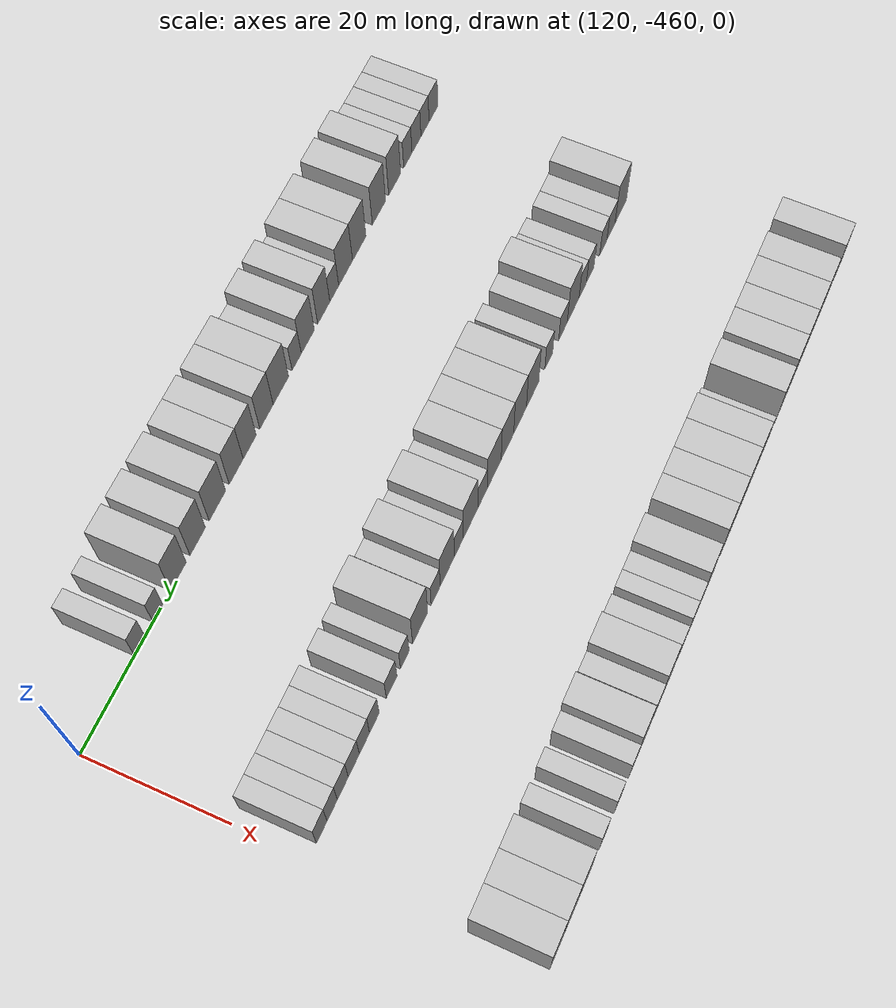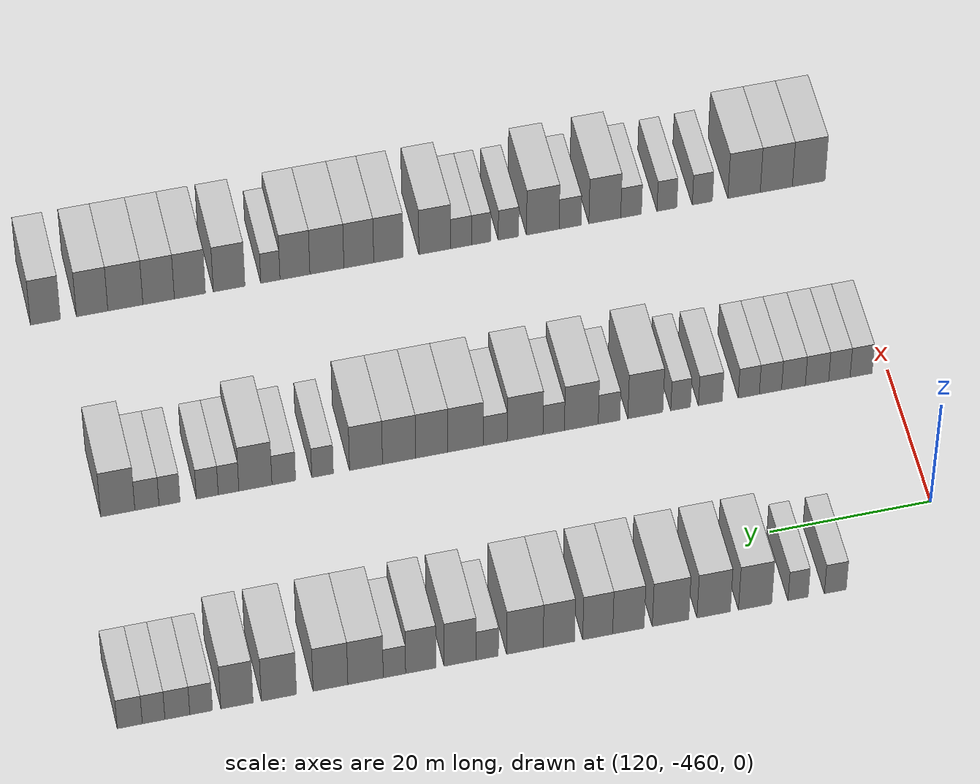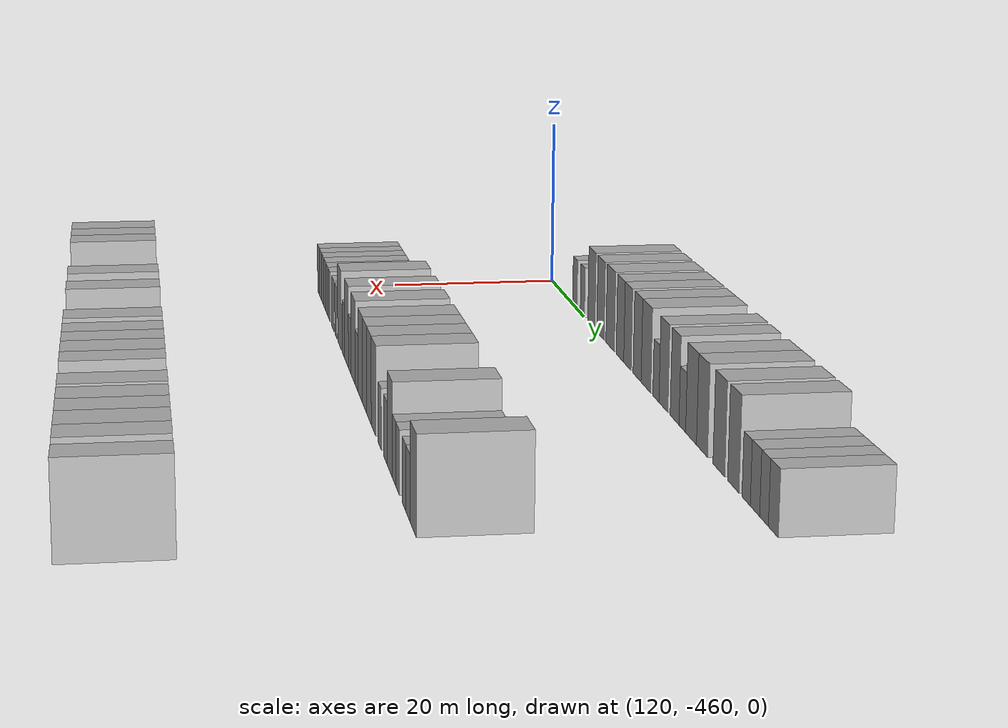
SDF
<sdf version="1.6">
 <world name="default">
  <model name="building_671">
   <static>1</static>
   <pose>115.0000 -445.3760 0 0.000000 0.000000 0.000000</pose>
   <link name="link">
    <pose>0 0 3.00 0 0 0</pose>
    <collision name="collision"><geometry><box><size>10.0000 2.6775 6.0000</size></box></geometry></collision>
    <visual name="visual">
     <cast_shadows>0</cast_shadows>
     <geometry><box><size>10.0000 2.6775 6.0000</size></box></geometry>
     <material>
      <script>
       <uri>model://HANNAS_wall/materials/scripts</uri>
       <uri>model://HANNAS_wall/materials/textures</uri>
       <name>vrc/HANNAS_wall</name>
      </script>
     </material>
    </visual>
   </link>
  </model>
  <model name="building_672">
   <static>1</static>
   <pose>115.0000 -440.8001 0 0.000000 0.000000 0.000000</pose>
   <link name="link">
    <pose>0 0 3.00 0 0 0</pose>
    <collision name="collision"><geometry><box><size>10.0000 2.4742 6.0000</size></box></geometry></collision>
    <visual name="visual">
     <cast_shadows>0</cast_shadows>
     <geometry><box><size>10.0000 2.4742 6.0000</size></box></geometry>
     <material>
      <script>
       <uri>model://HANNAS_wall/materials/scripts</uri>
       <uri>model://HANNAS_wall/materials/textures</uri>
       <name>vrc/HANNAS_wall</name>
      </script>
     </material>
    </visual>
   </link>
  </model>
  <model name="building_673">
   <static>1</static>
   <pose>115.0000 -435.5275 0 0.000000 0.000000 0.000000</pose>
   <link name="link">
    <pose>0 0 4.50 0 0 0</pose>
    <collision name="collision"><geometry><box><size>10.0000 4.0710 9.0000</size></box></geometry></collision>
    <visual name="visual">
     <cast_shadows>0</cast_shadows>
     <geometry><box><size>10.0000 4.0710 9.0000</size></box></geometry>
     <material>
      <script>
       <uri>model://HANNAS_wall/materials/scripts</uri>
       <uri>model://HANNAS_wall/materials/textures</uri>
       <name>vrc/HANNAS_wall</name>
      </script>
     </material>
    </visual>
   </link>
  </model>
  <model name="building_674">
   <static>1</static>
   <pose>115.0000 -430.4499 0 0.000000 0.000000 0.000000</pose>
   <link name="link">
    <pose>0 0 4.50 0 0 0</pose>
    <collision name="collision"><geometry><box><size>10.0000 4.0842 9.0000</size></box></geometry></collision>
    <visual name="visual">
     <cast_shadows>0</cast_shadows>
     <geometry><box><size>10.0000 4.0842 9.0000</size></box></geometry>
     <material>
      <script>
       <uri>model://HANNAS_wall/materials/scripts</uri>
       <uri>model://HANNAS_wall/materials/textures</uri>
       <name>vrc/HANNAS_wall</name>
      </script>
     </material>
    </visual>
   </link>
  </model>
  <model name="building_675">
   <static>1</static>
   <pose>115.0000 -425.1798 0 0.000000 0.000000 0.000000</pose>
   <link name="link">
    <pose>0 0 4.50 0 0 0</pose>
    <collision name="collision"><geometry><box><size>10.0000 4.4559 9.0000</size></box></geometry></collision>
    <visual name="visual">
     <cast_shadows>0</cast_shadows>
     <geometry><box><size>10.0000 4.4559 9.0000</size></box></geometry>
     <material>
      <script>
       <uri>model://HANNAS_wall/materials/scripts</uri>
       <uri>model://HANNAS_wall/materials/textures</uri>
       <name>vrc/HANNAS_wall</name>
      </script>
     </material>
    </visual>
   </link>
  </model>
  <model name="building_676">
   <static>1</static>
   <pose>115.0000 -420.0341 0 0.000000 0.000000 0.000000</pose>
   <link name="link">
    <pose>0 0 4.50 0 0 0</pose>
    <collision name="collision"><geometry><box><size>10.0000 3.8355 9.0000</size></box></geometry></collision>
    <visual name="visual">
     <cast_shadows>0</cast_shadows>
     <geometry><box><size>10.0000 3.8355 9.0000</size></box></geometry>
     <material>
      <script>
       <uri>model://HANNAS_wall/materials/scripts</uri>
       <uri>model://HANNAS_wall/materials/textures</uri>
       <name>vrc/HANNAS_wall</name>
      </script>
     </material>
    </visual>
   </link>
  </model>
  <model name="building_677">
   <static>1</static>
   <pose>115.0000 -416.2939 0 0.000000 0.000000 0.000000</pose>
   <link name="link">
    <pose>0 0 4.50 0 0 0</pose>
    <collision name="collision"><geometry><box><size>10.0000 3.6450 9.0000</size></box></geometry></collision>
    <visual name="visual">
     <cast_shadows>0</cast_shadows>
     <geometry><box><size>10.0000 3.6450 9.0000</size></box></geometry>
     <material>
      <script>
       <uri>model://HANNAS_wall/materials/scripts</uri>
       <uri>model://HANNAS_wall/materials/textures</uri>
       <name>vrc/HANNAS_wall</name>
      </script>
     </material>
    </visual>
   </link>
  </model>
  <model name="building_678">
   <static>1</static>
   <pose>115.0000 -411.5690 0 0.000000 0.000000 0.000000</pose>
   <link name="link">
    <pose>0 0 4.50 0 0 0</pose>
    <collision name="collision"><geometry><box><size>10.0000 3.8047 9.0000</size></box></geometry></collision>
    <visual name="visual">
     <cast_shadows>0</cast_shadows>
     <geometry><box><size>10.0000 3.8047 9.0000</size></box></geometry>
     <material>
      <script>
       <uri>model://HANNAS_wall/materials/scripts</uri>
       <uri>model://HANNAS_wall/materials/textures</uri>
       <name>vrc/HANNAS_wall</name>
      </script>
     </material>
    </visual>
   </link>
  </model>
  <model name="building_679">
   <static>1</static>
   <pose>115.0000 -407.4500 0 0.000000 0.000000 0.000000</pose>
   <link name="link">
    <pose>0 0 4.50 0 0 0</pose>
    <collision name="collision"><geometry><box><size>10.0000 4.4335 9.0000</size></box></geometry></collision>
    <visual name="visual">
     <cast_shadows>0</cast_shadows>
     <geometry><box><size>10.0000 4.4335 9.0000</size></box></geometry>
     <material>
      <script>
       <uri>model://HANNAS_wall/materials/scripts</uri>
       <uri>model://HANNAS_wall/materials/textures</uri>
       <name>vrc/HANNAS_wall</name>
      </script>
     </material>
    </visual>
   </link>
  </model>
  <model name="building_680">
   <static>1</static>
   <pose>115.0000 -402.8796 0 0.000000 0.000000 0.000000</pose>
   <link name="link">
    <pose>0 0 3.00 0 0 0</pose>
    <collision name="collision"><geometry><box><size>10.0000 2.7072 6.0000</size></box></geometry></collision>
    <visual name="visual">
     <cast_shadows>0</cast_shadows>
     <geometry><box><size>10.0000 2.7072 6.0000</size></box></geometry>
     <material>
      <script>
       <uri>model://HANNAS_wall/materials/scripts</uri>
       <uri>model://HANNAS_wall/materials/textures</uri>
       <name>vrc/HANNAS_wall</name>
      </script>
     </material>
    </visual>
   </link>
  </model>
  <model name="building_681">
   <static>1</static>
   <pose>115.0000 -399.5985 0 0.000000 0.000000 0.000000</pose>
   <link name="link">
    <pose>0 0 4.50 0 0 0</pose>
    <collision name="collision"><geometry><box><size>10.0000 3.8552 9.0000</size></box></geometry></collision>
    <visual name="visual">
     <cast_shadows>0</cast_shadows>
     <geometry><box><size>10.0000 3.8552 9.0000</size></box></geometry>
     <material>
      <script>
       <uri>model://HANNAS_wall/materials/scripts</uri>
       <uri>model://HANNAS_wall/materials/textures</uri>
       <name>vrc/HANNAS_wall</name>
      </script>
     </material>
    </visual>
   </link>
  </model>
  <model name="building_682">
   <static>1</static>
   <pose>115.0000 -394.8462 0 0.000000 0.000000 0.000000</pose>
   <link name="link">
    <pose>0 0 4.50 0 0 0</pose>
    <collision name="collision"><geometry><box><size>10.0000 3.6493 9.0000</size></box></geometry></collision>
    <visual name="visual">
     <cast_shadows>0</cast_shadows>
     <geometry><box><size>10.0000 3.6493 9.0000</size></box></geometry>
     <material>
      <script>
       <uri>model://HANNAS_wall/materials/scripts</uri>
       <uri>model://HANNAS_wall/materials/textures</uri>
       <name>vrc/HANNAS_wall</name>
      </script>
     </material>
    </visual>
   </link>
  </model>
  <model name="building_683">
   <static>1</static>
   <pose>115.0000 -391.6697 0 0.000000 0.000000 0.000000</pose>
   <link name="link">
    <pose>0 0 3.00 0 0 0</pose>
    <collision name="collision"><geometry><box><size>10.0000 2.7036 6.0000</size></box></geometry></collision>
    <visual name="visual">
     <cast_shadows>0</cast_shadows>
     <geometry><box><size>10.0000 2.7036 6.0000</size></box></geometry>
     <material>
      <script>
       <uri>model://HANNAS_wall/materials/scripts</uri>
       <uri>model://HANNAS_wall/materials/textures</uri>
       <name>vrc/HANNAS_wall</name>
      </script>
     </material>
    </visual>
   </link>
  </model>
  <model name="building_684">
   <static>1</static>
   <pose>115.0000 -388.1890 0 0.000000 0.000000 0.000000</pose>
   <link name="link">
    <pose>0 0 4.50 0 0 0</pose>
    <collision name="collision"><geometry><box><size>10.0000 4.2578 9.0000</size></box></geometry></collision>
    <visual name="visual">
     <cast_shadows>0</cast_shadows>
     <geometry><box><size>10.0000 4.2578 9.0000</size></box></geometry>
     <material>
      <script>
       <uri>model://HANNAS_wall/materials/scripts</uri>
       <uri>model://HANNAS_wall/materials/textures</uri>
       <name>vrc/HANNAS_wall</name>
      </script>
     </material>
    </visual>
   </link>
  </model>
  <model name="building_685">
   <static>1</static>
   <pose>115.0000 -383.9708 0 0.000000 0.000000 0.000000</pose>
   <link name="link">
    <pose>0 0 4.50 0 0 0</pose>
    <collision name="collision"><geometry><box><size>10.0000 4.1786 9.0000</size></box></geometry></collision>
    <visual name="visual">
     <cast_shadows>0</cast_shadows>
     <geometry><box><size>10.0000 4.1786 9.0000</size></box></geometry>
     <material>
      <script>
       <uri>model://HANNAS_wall/materials/scripts</uri>
       <uri>model://HANNAS_wall/materials/textures</uri>
       <name>vrc/HANNAS_wall</name>
      </script>
     </material>
    </visual>
   </link>
  </model>
  <model name="building_686">
   <static>1</static>
   <pose>115.0000 -377.7776 0 0.000000 0.000000 0.000000</pose>
   <link name="link">
    <pose>0 0 4.50 0 0 0</pose>
    <collision name="collision"><geometry><box><size>10.0000 4.2078 9.0000</size></box></geometry></collision>
    <visual name="visual">
     <cast_shadows>0</cast_shadows>
     <geometry><box><size>10.0000 4.2078 9.0000</size></box></geometry>
     <material>
      <script>
       <uri>model://HANNAS_wall/materials/scripts</uri>
       <uri>model://HANNAS_wall/materials/textures</uri>
       <name>vrc/HANNAS_wall</name>
      </script>
     </material>
    </visual>
   </link>
  </model>
  <model name="building_687">
   <static>1</static>
   <pose>115.0000 -372.7429 0 0.000000 0.000000 0.000000</pose>
   <link name="link">
    <pose>0 0 4.50 0 0 0</pose>
    <collision name="collision"><geometry><box><size>10.0000 3.8616 9.0000</size></box></geometry></collision>
    <visual name="visual">
     <cast_shadows>0</cast_shadows>
     <geometry><box><size>10.0000 3.8616 9.0000</size></box></geometry>
     <material>
      <script>
       <uri>model://HANNAS_wall/materials/scripts</uri>
       <uri>model://HANNAS_wall/materials/textures</uri>
       <name>vrc/HANNAS_wall</name>
      </script>
     </material>
    </visual>
   </link>
  </model>
  <model name="building_688">
   <static>1</static>
   <pose>115.0000 -368.4563 0 0.000000 0.000000 0.000000</pose>
   <link name="link">
    <pose>0 0 3.00 0 0 0</pose>
    <collision name="collision"><geometry><box><size>10.0000 2.7116 6.0000</size></box></geometry></collision>
    <visual name="visual">
     <cast_shadows>0</cast_shadows>
     <geometry><box><size>10.0000 2.7116 6.0000</size></box></geometry>
     <material>
      <script>
       <uri>model://HANNAS_wall/materials/scripts</uri>
       <uri>model://HANNAS_wall/materials/textures</uri>
       <name>vrc/HANNAS_wall</name>
      </script>
     </material>
    </visual>
   </link>
  </model>
  <model name="building_689">
   <static>1</static>
   <pose>115.0000 -365.6126 0 0.000000 0.000000 0.000000</pose>
   <link name="link">
    <pose>0 0 3.00 0 0 0</pose>
    <collision name="collision"><geometry><box><size>10.0000 2.9757 6.0000</size></box></geometry></collision>
    <visual name="visual">
     <cast_shadows>0</cast_shadows>
     <geometry><box><size>10.0000 2.9757 6.0000</size></box></geometry>
     <material>
      <script>
       <uri>model://HANNAS_wall/materials/scripts</uri>
       <uri>model://HANNAS_wall/materials/textures</uri>
       <name>vrc/HANNAS_wall</name>
      </script>
     </material>
    </visual>
   </link>
  </model>
  <model name="building_690">
   <static>1</static>
   <pose>115.0000 -362.7738 0 0.000000 0.000000 0.000000</pose>
   <link name="link">
    <pose>0 0 3.00 0 0 0</pose>
    <collision name="collision"><geometry><box><size>10.0000 2.7020 6.0000</size></box></geometry></collision>
    <visual name="visual">
     <cast_shadows>0</cast_shadows>
     <geometry><box><size>10.0000 2.7020 6.0000</size></box></geometry>
     <material>
      <script>
       <uri>model://HANNAS_wall/materials/scripts</uri>
       <uri>model://HANNAS_wall/materials/textures</uri>
       <name>vrc/HANNAS_wall</name>
      </script>
     </material>
    </visual>
   </link>
  </model>
  <model name="building_691">
   <static>1</static>
   <pose>115.0000 -359.9279 0 0.000000 0.000000 0.000000</pose>
   <link name="link">
    <pose>0 0 3.00 0 0 0</pose>
    <collision name="collision"><geometry><box><size>10.0000 2.9897 6.0000</size></box></geometry></collision>
    <visual name="visual">
     <cast_shadows>0</cast_shadows>
     <geometry><box><size>10.0000 2.9897 6.0000</size></box></geometry>
     <material>
      <script>
       <uri>model://HANNAS_wall/materials/scripts</uri>
       <uri>model://HANNAS_wall/materials/textures</uri>
       <name>vrc/HANNAS_wall</name>
      </script>
     </material>
    </visual>
   </link>
  </model>
  <model name="building_900">
   <static>1</static>
   <pose>145.0000 -456.6110 0 0.000000 0.000000 0.000000</pose>
   <link name="link">
    <pose>0 0 3.00 0 0 0</pose>
    <collision name="collision"><geometry><box><size>10.0000 2.7779 6.0000</size></box></geometry></collision>
    <visual name="visual">
     <cast_shadows>0</cast_shadows>
     <geometry><box><size>10.0000 2.7779 6.0000</size></box></geometry>
     <material>
      <script>
       <uri>model://HANNAS_wall/materials/scripts</uri>
       <uri>model://HANNAS_wall/materials/textures</uri>
       <name>vrc/HANNAS_wall</name>
      </script>
     </material>
    </visual>
   </link>
  </model>
  <model name="building_901">
   <static>1</static>
   <pose>145.0000 -453.8706 0 0.000000 0.000000 0.000000</pose>
   <link name="link">
    <pose>0 0 3.00 0 0 0</pose>
    <collision name="collision"><geometry><box><size>10.0000 2.7029 6.0000</size></box></geometry></collision>
    <visual name="visual">
     <cast_shadows>0</cast_shadows>
     <geometry><box><size>10.0000 2.7029 6.0000</size></box></geometry>
     <material>
      <script>
       <uri>model://HANNAS_wall/materials/scripts</uri>
       <uri>model://HANNAS_wall/materials/textures</uri>
       <name>vrc/HANNAS_wall</name>
      </script>
     </material>
    </visual>
   </link>
  </model>
  <model name="building_902">
   <static>1</static>
   <pose>145.0000 -451.0478 0 0.000000 0.000000 0.000000</pose>
   <link name="link">
    <pose>0 0 3.00 0 0 0</pose>
    <collision name="collision"><geometry><box><size>10.0000 2.9427 6.0000</size></box></geometry></collision>
    <visual name="visual">
     <cast_shadows>0</cast_shadows>
     <geometry><box><size>10.0000 2.9427 6.0000</size></box></geometry>
     <material>
      <script>
       <uri>model://HANNAS_wall/materials/scripts</uri>
       <uri>model://HANNAS_wall/materials/textures</uri>
       <name>vrc/HANNAS_wall</name>
      </script>
     </material>
    </visual>
   </link>
  </model>
  <model name="building_903">
   <static>1</static>
   <pose>145.0000 -448.0802 0 0.000000 0.000000 0.000000</pose>
   <link name="link">
    <pose>0 0 3.00 0 0 0</pose>
    <collision name="collision"><geometry><box><size>10.0000 2.9925 6.0000</size></box></geometry></collision>
    <visual name="visual">
     <cast_shadows>0</cast_shadows>
     <geometry><box><size>10.0000 2.9925 6.0000</size></box></geometry>
     <material>
      <script>
       <uri>model://HANNAS_wall/materials/scripts</uri>
       <uri>model://HANNAS_wall/materials/textures</uri>
       <name>vrc/HANNAS_wall</name>
      </script>
     </material>
    </visual>
   </link>
  </model>
  <model name="building_904">
   <static>1</static>
   <pose>145.0000 -445.1848 0 0.000000 0.000000 0.000000</pose>
   <link name="link">
    <pose>0 0 3.00 0 0 0</pose>
    <collision name="collision"><geometry><box><size>10.0000 2.7984 6.0000</size></box></geometry></collision>
    <visual name="visual">
     <cast_shadows>0</cast_shadows>
     <geometry><box><size>10.0000 2.7984 6.0000</size></box></geometry>
     <material>
      <script>
       <uri>model://HANNAS_wall/materials/scripts</uri>
       <uri>model://HANNAS_wall/materials/textures</uri>
       <name>vrc/HANNAS_wall</name>
      </script>
     </material>
    </visual>
   </link>
  </model>
  <model name="building_905">
   <static>1</static>
   <pose>145.0000 -442.4582 0 0.000000 0.000000 0.000000</pose>
   <link name="link">
    <pose>0 0 3.00 0 0 0</pose>
    <collision name="collision"><geometry><box><size>10.0000 2.6548 6.0000</size></box></geometry></collision>
    <visual name="visual">
     <cast_shadows>0</cast_shadows>
     <geometry><box><size>10.0000 2.6548 6.0000</size></box></geometry>
     <material>
      <script>
       <uri>model://HANNAS_wall/materials/scripts</uri>
       <uri>model://HANNAS_wall/materials/textures</uri>
       <name>vrc/HANNAS_wall</name>
      </script>
     </material>
    </visual>
   </link>
  </model>
  <model name="building_906">
   <static>1</static>
   <pose>145.0000 -437.6329 0 0.000000 0.000000 0.000000</pose>
   <link name="link">
    <pose>0 0 3.00 0 0 0</pose>
    <collision name="collision"><geometry><box><size>10.0000 2.9958 6.0000</size></box></geometry></collision>
    <visual name="visual">
     <cast_shadows>0</cast_shadows>
     <geometry><box><size>10.0000 2.9958 6.0000</size></box></geometry>
     <material>
      <script>
       <uri>model://HANNAS_wall/materials/scripts</uri>
       <uri>model://HANNAS_wall/materials/textures</uri>
       <name>vrc/HANNAS_wall</name>
      </script>
     </material>
    </visual>
   </link>
  </model>
  <model name="building_907">
   <static>1</static>
   <pose>145.0000 -433.9022 0 0.000000 0.000000 0.000000</pose>
   <link name="link">
    <pose>0 0 3.00 0 0 0</pose>
    <collision name="collision"><geometry><box><size>10.0000 2.4657 6.0000</size></box></geometry></collision>
    <visual name="visual">
     <cast_shadows>0</cast_shadows>
     <geometry><box><size>10.0000 2.4657 6.0000</size></box></geometry>
     <material>
      <script>
       <uri>model://HANNAS_wall/materials/scripts</uri>
       <uri>model://HANNAS_wall/materials/textures</uri>
       <name>vrc/HANNAS_wall</name>
      </script>
     </material>
    </visual>
   </link>
  </model>
  <model name="building_908">
   <static>1</static>
   <pose>145.0000 -429.4810 0 0.000000 0.000000 0.000000</pose>
   <link name="link">
    <pose>0 0 4.50 0 0 0</pose>
    <collision name="collision"><geometry><box><size>10.0000 4.3766 9.0000</size></box></geometry></collision>
    <visual name="visual">
     <cast_shadows>0</cast_shadows>
     <geometry><box><size>10.0000 4.3766 9.0000</size></box></geometry>
     <material>
      <script>
       <uri>model://HANNAS_wall/materials/scripts</uri>
       <uri>model://HANNAS_wall/materials/textures</uri>
       <name>vrc/HANNAS_wall</name>
      </script>
     </material>
    </visual>
   </link>
  </model>
  <model name="building_909">
   <static>1</static>
   <pose>145.0000 -424.9459 0 0.000000 0.000000 0.000000</pose>
   <link name="link">
    <pose>0 0 3.00 0 0 0</pose>
    <collision name="collision"><geometry><box><size>10.0000 2.6937 6.0000</size></box></geometry></collision>
    <visual name="visual">
     <cast_shadows>0</cast_shadows>
     <geometry><box><size>10.0000 2.6937 6.0000</size></box></geometry>
     <material>
      <script>
       <uri>model://HANNAS_wall/materials/scripts</uri>
       <uri>model://HANNAS_wall/materials/textures</uri>
       <name>vrc/HANNAS_wall</name>
      </script>
     </material>
    </visual>
   </link>
  </model>
  <model name="building_910">
   <static>1</static>
   <pose>145.0000 -421.4860 0 0.000000 0.000000 0.000000</pose>
   <link name="link">
    <pose>0 0 4.50 0 0 0</pose>
    <collision name="collision"><geometry><box><size>10.0000 4.2260 9.0000</size></box></geometry></collision>
    <visual name="visual">
     <cast_shadows>0</cast_shadows>
     <geometry><box><size>10.0000 4.2260 9.0000</size></box></geometry>
     <material>
      <script>
       <uri>model://HANNAS_wall/materials/scripts</uri>
       <uri>model://HANNAS_wall/materials/textures</uri>
       <name>vrc/HANNAS_wall</name>
      </script>
     </material>
    </visual>
   </link>
  </model>
  <model name="building_911">
   <static>1</static>
   <pose>145.0000 -418.0402 0 0.000000 0.000000 0.000000</pose>
   <link name="link">
    <pose>0 0 3.00 0 0 0</pose>
    <collision name="collision"><geometry><box><size>10.0000 2.6656 6.0000</size></box></geometry></collision>
    <visual name="visual">
     <cast_shadows>0</cast_shadows>
     <geometry><box><size>10.0000 2.6656 6.0000</size></box></geometry>
     <material>
      <script>
       <uri>model://HANNAS_wall/materials/scripts</uri>
       <uri>model://HANNAS_wall/materials/textures</uri>
       <name>vrc/HANNAS_wall</name>
      </script>
     </material>
    </visual>
   </link>
  </model>
  <model name="building_912">
   <static>1</static>
   <pose>145.0000 -414.4794 0 0.000000 0.000000 0.000000</pose>
   <link name="link">
    <pose>0 0 4.50 0 0 0</pose>
    <collision name="collision"><geometry><box><size>10.0000 4.4558 9.0000</size></box></geometry></collision>
    <visual name="visual">
     <cast_shadows>0</cast_shadows>
     <geometry><box><size>10.0000 4.4558 9.0000</size></box></geometry>
     <material>
      <script>
       <uri>model://HANNAS_wall/materials/scripts</uri>
       <uri>model://HANNAS_wall/materials/textures</uri>
       <name>vrc/HANNAS_wall</name>
      </script>
     </material>
    </visual>
   </link>
  </model>
  <model name="building_913">
   <static>1</static>
   <pose>145.0000 -410.7735 0 0.000000 0.000000 0.000000</pose>
   <link name="link">
    <pose>0 0 3.00 0 0 0</pose>
    <collision name="collision"><geometry><box><size>10.0000 2.9561 6.0000</size></box></geometry></collision>
    <visual name="visual">
     <cast_shadows>0</cast_shadows>
     <geometry><box><size>10.0000 2.9561 6.0000</size></box></geometry>
     <material>
      <script>
       <uri>model://HANNAS_wall/materials/scripts</uri>
       <uri>model://HANNAS_wall/materials/textures</uri>
       <name>vrc/HANNAS_wall</name>
      </script>
     </material>
    </visual>
   </link>
  </model>
  <model name="building_914">
   <static>1</static>
   <pose>145.0000 -407.0981 0 0.000000 0.000000 0.000000</pose>
   <link name="link">
    <pose>0 0 4.50 0 0 0</pose>
    <collision name="collision"><geometry><box><size>10.0000 4.3946 9.0000</size></box></geometry></collision>
    <visual name="visual">
     <cast_shadows>0</cast_shadows>
     <geometry><box><size>10.0000 4.3946 9.0000</size></box></geometry>
     <material>
      <script>
       <uri>model://HANNAS_wall/materials/scripts</uri>
       <uri>model://HANNAS_wall/materials/textures</uri>
       <name>vrc/HANNAS_wall</name>
      </script>
     </material>
    </visual>
   </link>
  </model>
  <model name="building_915">
   <static>1</static>
   <pose>145.0000 -402.8965 0 0.000000 0.000000 0.000000</pose>
   <link name="link">
    <pose>0 0 4.50 0 0 0</pose>
    <collision name="collision"><geometry><box><size>10.0000 4.0086 9.0000</size></box></geometry></collision>
    <visual name="visual">
     <cast_shadows>0</cast_shadows>
     <geometry><box><size>10.0000 4.0086 9.0000</size></box></geometry>
     <material>
      <script>
       <uri>model://HANNAS_wall/materials/scripts</uri>
       <uri>model://HANNAS_wall/materials/textures</uri>
       <name>vrc/HANNAS_wall</name>
      </script>
     </material>
    </visual>
   </link>
  </model>
  <model name="building_916">
   <static>1</static>
   <pose>145.0000 -398.8429 0 0.000000 0.000000 0.000000</pose>
   <link name="link">
    <pose>0 0 4.50 0 0 0</pose>
    <collision name="collision"><geometry><box><size>10.0000 4.0987 9.0000</size></box></geometry></collision>
    <visual name="visual">
     <cast_shadows>0</cast_shadows>
     <geometry><box><size>10.0000 4.0987 9.0000</size></box></geometry>
     <material>
      <script>
       <uri>model://HANNAS_wall/materials/scripts</uri>
       <uri>model://HANNAS_wall/materials/textures</uri>
       <name>vrc/HANNAS_wall</name>
      </script>
     </material>
    </visual>
   </link>
  </model>
  <model name="building_917">
   <static>1</static>
   <pose>145.0000 -394.7575 0 0.000000 0.000000 0.000000</pose>
   <link name="link">
    <pose>0 0 4.50 0 0 0</pose>
    <collision name="collision"><geometry><box><size>10.0000 4.0721 9.0000</size></box></geometry></collision>
    <visual name="visual">
     <cast_shadows>0</cast_shadows>
     <geometry><box><size>10.0000 4.0721 9.0000</size></box></geometry>
     <material>
      <script>
       <uri>model://HANNAS_wall/materials/scripts</uri>
       <uri>model://HANNAS_wall/materials/textures</uri>
       <name>vrc/HANNAS_wall</name>
      </script>
     </material>
    </visual>
   </link>
  </model>
  <model name="building_918">
   <static>1</static>
   <pose>145.0000 -389.3959 0 0.000000 0.000000 0.000000</pose>
   <link name="link">
    <pose>0 0 3.00 0 0 0</pose>
    <collision name="collision"><geometry><box><size>10.0000 2.6510 6.0000</size></box></geometry></collision>
    <visual name="visual">
     <cast_shadows>0</cast_shadows>
     <geometry><box><size>10.0000 2.6510 6.0000</size></box></geometry>
     <material>
      <script>
       <uri>model://HANNAS_wall/materials/scripts</uri>
       <uri>model://HANNAS_wall/materials/textures</uri>
       <name>vrc/HANNAS_wall</name>
      </script>
     </material>
    </visual>
   </link>
  </model>
  <model name="building_919">
   <static>1</static>
   <pose>145.0000 -384.6174 0 0.000000 0.000000 0.000000</pose>
   <link name="link">
    <pose>0 0 3.00 0 0 0</pose>
    <collision name="collision"><geometry><box><size>10.0000 2.9060 6.0000</size></box></geometry></collision>
    <visual name="visual">
     <cast_shadows>0</cast_shadows>
     <geometry><box><size>10.0000 2.9060 6.0000</size></box></geometry>
     <material>
      <script>
       <uri>model://HANNAS_wall/materials/scripts</uri>
       <uri>model://HANNAS_wall/materials/textures</uri>
       <name>vrc/HANNAS_wall</name>
      </script>
     </material>
    </visual>
   </link>
  </model>
  <model name="building_920">
   <static>1</static>
   <pose>145.0000 -381.1298 0 0.000000 0.000000 0.000000</pose>
   <link name="link">
    <pose>0 0 4.50 0 0 0</pose>
    <collision name="collision"><geometry><box><size>10.0000 4.0691 9.0000</size></box></geometry></collision>
    <visual name="visual">
     <cast_shadows>0</cast_shadows>
     <geometry><box><size>10.0000 4.0691 9.0000</size></box></geometry>
     <material>
      <script>
       <uri>model://HANNAS_wall/materials/scripts</uri>
       <uri>model://HANNAS_wall/materials/textures</uri>
       <name>vrc/HANNAS_wall</name>
      </script>
     </material>
    </visual>
   </link>
  </model>
  <model name="building_921">
   <static>1</static>
   <pose>145.0000 -377.8274 0 0.000000 0.000000 0.000000</pose>
   <link name="link">
    <pose>0 0 3.00 0 0 0</pose>
    <collision name="collision"><geometry><box><size>10.0000 2.5356 6.0000</size></box></geometry></collision>
    <visual name="visual">
     <cast_shadows>0</cast_shadows>
     <geometry><box><size>10.0000 2.5356 6.0000</size></box></geometry>
     <material>
      <script>
       <uri>model://HANNAS_wall/materials/scripts</uri>
       <uri>model://HANNAS_wall/materials/textures</uri>
       <name>vrc/HANNAS_wall</name>
      </script>
     </material>
    </visual>
   </link>
  </model>
  <model name="building_922">
   <static>1</static>
   <pose>145.0000 -375.2167 0 0.000000 0.000000 0.000000</pose>
   <link name="link">
    <pose>0 0 3.00 0 0 0</pose>
    <collision name="collision"><geometry><box><size>10.0000 2.6859 6.0000</size></box></geometry></collision>
    <visual name="visual">
     <cast_shadows>0</cast_shadows>
     <geometry><box><size>10.0000 2.6859 6.0000</size></box></geometry>
     <material>
      <script>
       <uri>model://HANNAS_wall/materials/scripts</uri>
       <uri>model://HANNAS_wall/materials/textures</uri>
       <name>vrc/HANNAS_wall</name>
      </script>
     </material>
    </visual>
   </link>
  </model>
  <model name="building_923">
   <static>1</static>
   <pose>145.0000 -370.5870 0 0.000000 0.000000 0.000000</pose>
   <link name="link">
    <pose>0 0 3.00 0 0 0</pose>
    <collision name="collision"><geometry><box><size>10.0000 2.5735 6.0000</size></box></geometry></collision>
    <visual name="visual">
     <cast_shadows>0</cast_shadows>
     <geometry><box><size>10.0000 2.5735 6.0000</size></box></geometry>
     <material>
      <script>
       <uri>model://HANNAS_wall/materials/scripts</uri>
       <uri>model://HANNAS_wall/materials/textures</uri>
       <name>vrc/HANNAS_wall</name>
      </script>
     </material>
    </visual>
   </link>
  </model>
  <model name="building_924">
   <static>1</static>
   <pose>145.0000 -367.8205 0 0.000000 0.000000 0.000000</pose>
   <link name="link">
    <pose>0 0 3.00 0 0 0</pose>
    <collision name="collision"><geometry><box><size>10.0000 2.9595 6.0000</size></box></geometry></collision>
    <visual name="visual">
     <cast_shadows>0</cast_shadows>
     <geometry><box><size>10.0000 2.9595 6.0000</size></box></geometry>
     <material>
      <script>
       <uri>model://HANNAS_wall/materials/scripts</uri>
       <uri>model://HANNAS_wall/materials/textures</uri>
       <name>vrc/HANNAS_wall</name>
      </script>
     </material>
    </visual>
   </link>
  </model>
  <model name="building_925">
   <static>1</static>
   <pose>145.0000 -364.2528 0 0.000000 0.000000 0.000000</pose>
   <link name="link">
    <pose>0 0 4.50 0 0 0</pose>
    <collision name="collision"><geometry><box><size>10.0000 4.1759 9.0000</size></box></geometry></collision>
    <visual name="visual">
     <cast_shadows>0</cast_shadows>
     <geometry><box><size>10.0000 4.1759 9.0000</size></box></geometry>
     <material>
      <script>
       <uri>model://HANNAS_wall/materials/scripts</uri>
       <uri>model://HANNAS_wall/materials/textures</uri>
       <name>vrc/HANNAS_wall</name>
      </script>
     </material>
    </visual>
   </link>
  </model>
  <model name="building_1132">
   <static>1</static>
   <pose>175.0000 -457.8930 0 0.000000 0.000000 0.000000</pose>
   <link name="link">
    <pose>0 0 4.50 0 0 0</pose>
    <collision name="collision"><geometry><box><size>10.0000 4.2140 9.0000</size></box></geometry></collision>
    <visual name="visual">
     <cast_shadows>0</cast_shadows>
     <geometry><box><size>10.0000 4.2140 9.0000</size></box></geometry>
     <material>
      <script>
       <uri>model://HANNAS_wall/materials/scripts</uri>
       <uri>model://HANNAS_wall/materials/textures</uri>
       <name>vrc/HANNAS_wall</name>
      </script>
     </material>
    </visual>
   </link>
  </model>
  <model name="building_1133">
   <static>1</static>
   <pose>175.0000 -453.7171 0 0.000000 0.000000 0.000000</pose>
   <link name="link">
    <pose>0 0 4.50 0 0 0</pose>
    <collision name="collision"><geometry><box><size>10.0000 4.1378 9.0000</size></box></geometry></collision>
    <visual name="visual">
     <cast_shadows>0</cast_shadows>
     <geometry><box><size>10.0000 4.1378 9.0000</size></box></geometry>
     <material>
      <script>
       <uri>model://HANNAS_wall/materials/scripts</uri>
       <uri>model://HANNAS_wall/materials/textures</uri>
       <name>vrc/HANNAS_wall</name>
      </script>
     </material>
    </visual>
   </link>
  </model>
  <model name="building_1134">
   <static>1</static>
   <pose>175.0000 -449.5631 0 0.000000 0.000000 0.000000</pose>
   <link name="link">
    <pose>0 0 4.50 0 0 0</pose>
    <collision name="collision"><geometry><box><size>10.0000 4.1702 9.0000</size></box></geometry></collision>
    <visual name="visual">
     <cast_shadows>0</cast_shadows>
     <geometry><box><size>10.0000 4.1702 9.0000</size></box></geometry>
     <material>
      <script>
       <uri>model://HANNAS_wall/materials/scripts</uri>
       <uri>model://HANNAS_wall/materials/textures</uri>
       <name>vrc/HANNAS_wall</name>
      </script>
     </material>
    </visual>
   </link>
  </model>
  <model name="building_1135">
   <static>1</static>
   <pose>175.0000 -444.1880 0 0.000000 0.000000 0.000000</pose>
   <link name="link">
    <pose>0 0 3.00 0 0 0</pose>
    <collision name="collision"><geometry><box><size>10.0000 2.5800 6.0000</size></box></geometry></collision>
    <visual name="visual">
     <cast_shadows>0</cast_shadows>
     <geometry><box><size>10.0000 2.5800 6.0000</size></box></geometry>
     <material>
      <script>
       <uri>model://HANNAS_wall/materials/scripts</uri>
       <uri>model://HANNAS_wall/materials/textures</uri>
       <name>vrc/HANNAS_wall</name>
      </script>
     </material>
    </visual>
   </link>
  </model>
  <model name="building_1136">
   <static>1</static>
   <pose>175.0000 -439.6302 0 0.000000 0.000000 0.000000</pose>
   <link name="link">
    <pose>0 0 3.00 0 0 0</pose>
    <collision name="collision"><geometry><box><size>10.0000 2.5354 6.0000</size></box></geometry></collision>
    <visual name="visual">
     <cast_shadows>0</cast_shadows>
     <geometry><box><size>10.0000 2.5354 6.0000</size></box></geometry>
     <material>
      <script>
       <uri>model://HANNAS_wall/materials/scripts</uri>
       <uri>model://HANNAS_wall/materials/textures</uri>
       <name>vrc/HANNAS_wall</name>
      </script>
     </material>
    </visual>
   </link>
  </model>
  <model name="building_1137">
   <static>1</static>
   <pose>175.0000 -435.0328 0 0.000000 0.000000 0.000000</pose>
   <link name="link">
    <pose>0 0 3.00 0 0 0</pose>
    <collision name="collision"><geometry><box><size>10.0000 2.6595 6.0000</size></box></geometry></collision>
    <visual name="visual">
     <cast_shadows>0</cast_shadows>
     <geometry><box><size>10.0000 2.6595 6.0000</size></box></geometry>
     <material>
      <script>
       <uri>model://HANNAS_wall/materials/scripts</uri>
       <uri>model://HANNAS_wall/materials/textures</uri>
       <name>vrc/HANNAS_wall</name>
      </script>
     </material>
    </visual>
   </link>
  </model>
  <model name="building_1138">
   <static>1</static>
   <pose>175.0000 -431.6676 0 0.000000 0.000000 0.000000</pose>
   <link name="link">
    <pose>0 0 4.50 0 0 0</pose>
    <collision name="collision"><geometry><box><size>10.0000 4.0709 9.0000</size></box></geometry></collision>
    <visual name="visual">
     <cast_shadows>0</cast_shadows>
     <geometry><box><size>10.0000 4.0709 9.0000</size></box></geometry>
     <material>
      <script>
       <uri>model://HANNAS_wall/materials/scripts</uri>
       <uri>model://HANNAS_wall/materials/textures</uri>
       <name>vrc/HANNAS_wall</name>
      </script>
     </material>
    </visual>
   </link>
  </model>
  <model name="building_1139">
   <static>1</static>
   <pose>175.0000 -427.2301 0 0.000000 0.000000 0.000000</pose>
   <link name="link">
    <pose>0 0 3.00 0 0 0</pose>
    <collision name="collision"><geometry><box><size>10.0000 2.8041 6.0000</size></box></geometry></collision>
    <visual name="visual">
     <cast_shadows>0</cast_shadows>
     <geometry><box><size>10.0000 2.8041 6.0000</size></box></geometry>
     <material>
      <script>
       <uri>model://HANNAS_wall/materials/scripts</uri>
       <uri>model://HANNAS_wall/materials/textures</uri>
       <name>vrc/HANNAS_wall</name>
      </script>
     </material>
    </visual>
   </link>
  </model>
  <model name="building_1140">
   <static>1</static>
   <pose>175.0000 -423.7474 0 0.000000 0.000000 0.000000</pose>
   <link name="link">
    <pose>0 0 4.50 0 0 0</pose>
    <collision name="collision"><geometry><box><size>10.0000 4.1611 9.0000</size></box></geometry></collision>
    <visual name="visual">
     <cast_shadows>0</cast_shadows>
     <geometry><box><size>10.0000 4.1611 9.0000</size></box></geometry>
     <material>
      <script>
       <uri>model://HANNAS_wall/materials/scripts</uri>
       <uri>model://HANNAS_wall/materials/textures</uri>
       <name>vrc/HANNAS_wall</name>
      </script>
     </material>
    </visual>
   </link>
  </model>
  <model name="building_1141">
   <static>1</static>
   <pose>175.0000 -419.3685 0 0.000000 0.000000 0.000000</pose>
   <link name="link">
    <pose>0 0 3.00 0 0 0</pose>
    <collision name="collision"><geometry><box><size>10.0000 2.5968 6.0000</size></box></geometry></collision>
    <visual name="visual">
     <cast_shadows>0</cast_shadows>
     <geometry><box><size>10.0000 2.5968 6.0000</size></box></geometry>
     <material>
      <script>
       <uri>model://HANNAS_wall/materials/scripts</uri>
       <uri>model://HANNAS_wall/materials/textures</uri>
       <name>vrc/HANNAS_wall</name>
      </script>
     </material>
    </visual>
   </link>
  </model>
  <model name="building_1142">
   <static>1</static>
   <pose>175.0000 -415.8671 0 0.000000 0.000000 0.000000</pose>
   <link name="link">
    <pose>0 0 3.00 0 0 0</pose>
    <collision name="collision"><geometry><box><size>10.0000 2.4061 6.0000</size></box></geometry></collision>
    <visual name="visual">
     <cast_shadows>0</cast_shadows>
     <geometry><box><size>10.0000 2.4061 6.0000</size></box></geometry>
     <material>
      <script>
       <uri>model://HANNAS_wall/materials/scripts</uri>
       <uri>model://HANNAS_wall/materials/textures</uri>
       <name>vrc/HANNAS_wall</name>
      </script>
     </material>
    </visual>
   </link>
  </model>
  <model name="building_1143">
   <static>1</static>
   <pose>175.0000 -413.3413 0 0.000000 0.000000 0.000000</pose>
   <link name="link">
    <pose>0 0 3.00 0 0 0</pose>
    <collision name="collision"><geometry><box><size>10.0000 2.6453 6.0000</size></box></geometry></collision>
    <visual name="visual">
     <cast_shadows>0</cast_shadows>
     <geometry><box><size>10.0000 2.6453 6.0000</size></box></geometry>
     <material>
      <script>
       <uri>model://HANNAS_wall/materials/scripts</uri>
       <uri>model://HANNAS_wall/materials/textures</uri>
       <name>vrc/HANNAS_wall</name>
      </script>
     </material>
    </visual>
   </link>
  </model>
  <model name="building_1144">
   <static>1</static>
   <pose>175.0000 -409.9990 0 0.000000 0.000000 0.000000</pose>
   <link name="link">
    <pose>0 0 4.50 0 0 0</pose>
    <collision name="collision"><geometry><box><size>10.0000 4.0394 9.0000</size></box></geometry></collision>
    <visual name="visual">
     <cast_shadows>0</cast_shadows>
     <geometry><box><size>10.0000 4.0394 9.0000</size></box></geometry>
     <material>
      <script>
       <uri>model://HANNAS_wall/materials/scripts</uri>
       <uri>model://HANNAS_wall/materials/textures</uri>
       <name>vrc/HANNAS_wall</name>
      </script>
     </material>
    </visual>
   </link>
  </model>
  <model name="building_1145">
   <static>1</static>
   <pose>175.0000 -404.1158 0 0.000000 0.000000 0.000000</pose>
   <link name="link">
    <pose>0 0 4.50 0 0 0</pose>
    <collision name="collision"><geometry><box><size>10.0000 3.7268 9.0000</size></box></geometry></collision>
    <visual name="visual">
     <cast_shadows>0</cast_shadows>
     <geometry><box><size>10.0000 3.7268 9.0000</size></box></geometry>
     <material>
      <script>
       <uri>model://HANNAS_wall/materials/scripts</uri>
       <uri>model://HANNAS_wall/materials/textures</uri>
       <name>vrc/HANNAS_wall</name>
      </script>
     </material>
    </visual>
   </link>
  </model>
  <model name="building_1146">
   <static>1</static>
   <pose>175.0000 -400.3633 0 0.000000 0.000000 0.000000</pose>
   <link name="link">
    <pose>0 0 4.50 0 0 0</pose>
    <collision name="collision"><geometry><box><size>10.0000 3.7782 9.0000</size></box></geometry></collision>
    <visual name="visual">
     <cast_shadows>0</cast_shadows>
     <geometry><box><size>10.0000 3.7782 9.0000</size></box></geometry>
     <material>
      <script>
       <uri>model://HANNAS_wall/materials/scripts</uri>
       <uri>model://HANNAS_wall/materials/textures</uri>
       <name>vrc/HANNAS_wall</name>
      </script>
     </material>
    </visual>
   </link>
  </model>
  <model name="building_1147">
   <static>1</static>
   <pose>175.0000 -396.3245 0 0.000000 0.000000 0.000000</pose>
   <link name="link">
    <pose>0 0 4.50 0 0 0</pose>
    <collision name="collision"><geometry><box><size>10.0000 4.2993 9.0000</size></box></geometry></collision>
    <visual name="visual">
     <cast_shadows>0</cast_shadows>
     <geometry><box><size>10.0000 4.2993 9.0000</size></box></geometry>
     <material>
      <script>
       <uri>model://HANNAS_wall/materials/scripts</uri>
       <uri>model://HANNAS_wall/materials/textures</uri>
       <name>vrc/HANNAS_wall</name>
      </script>
     </material>
    </visual>
   </link>
  </model>
  <model name="building_1148">
   <static>1</static>
   <pose>175.0000 -392.2873 0 0.000000 0.000000 0.000000</pose>
   <link name="link">
    <pose>0 0 4.50 0 0 0</pose>
    <collision name="collision"><geometry><box><size>10.0000 3.7751 9.0000</size></box></geometry></collision>
    <visual name="visual">
     <cast_shadows>0</cast_shadows>
     <geometry><box><size>10.0000 3.7751 9.0000</size></box></geometry>
     <material>
      <script>
       <uri>model://HANNAS_wall/materials/scripts</uri>
       <uri>model://HANNAS_wall/materials/textures</uri>
       <name>vrc/HANNAS_wall</name>
      </script>
     </material>
    </visual>
   </link>
  </model>
  <model name="building_1149">
   <static>1</static>
   <pose>175.0000 -389.1902 0 0.000000 0.000000 0.000000</pose>
   <link name="link">
    <pose>0 0 3.00 0 0 0</pose>
    <collision name="collision"><geometry><box><size>10.0000 2.4192 6.0000</size></box></geometry></collision>
    <visual name="visual">
     <cast_shadows>0</cast_shadows>
     <geometry><box><size>10.0000 2.4192 6.0000</size></box></geometry>
     <material>
      <script>
       <uri>model://HANNAS_wall/materials/scripts</uri>
       <uri>model://HANNAS_wall/materials/textures</uri>
       <name>vrc/HANNAS_wall</name>
      </script>
     </material>
    </visual>
   </link>
  </model>
  <model name="building_1150">
   <static>1</static>
   <pose>175.0000 -383.9927 0 0.000000 0.000000 0.000000</pose>
   <link name="link">
    <pose>0 0 4.50 0 0 0</pose>
    <collision name="collision"><geometry><box><size>10.0000 3.9758 9.0000</size></box></geometry></collision>
    <visual name="visual">
     <cast_shadows>0</cast_shadows>
     <geometry><box><size>10.0000 3.9758 9.0000</size></box></geometry>
     <material>
      <script>
       <uri>model://HANNAS_wall/materials/scripts</uri>
       <uri>model://HANNAS_wall/materials/textures</uri>
       <name>vrc/HANNAS_wall</name>
      </script>
     </material>
    </visual>
   </link>
  </model>
  <model name="building_1151">
   <static>1</static>
   <pose>175.0000 -379.0548 0 0.000000 0.000000 0.000000</pose>
   <link name="link">
    <pose>0 0 4.50 0 0 0</pose>
    <collision name="collision"><geometry><box><size>10.0000 3.9001 9.0000</size></box></geometry></collision>
    <visual name="visual">
     <cast_shadows>0</cast_shadows>
     <geometry><box><size>10.0000 3.9001 9.0000</size></box></geometry>
     <material>
      <script>
       <uri>model://HANNAS_wall/materials/scripts</uri>
       <uri>model://HANNAS_wall/materials/textures</uri>
       <name>vrc/HANNAS_wall</name>
      </script>
     </material>
    </visual>
   </link>
  </model>
  <model name="building_1152">
   <static>1</static>
   <pose>175.0000 -375.1295 0 0.000000 0.000000 0.000000</pose>
   <link name="link">
    <pose>0 0 4.50 0 0 0</pose>
    <collision name="collision"><geometry><box><size>10.0000 3.9504 9.0000</size></box></geometry></collision>
    <visual name="visual">
     <cast_shadows>0</cast_shadows>
     <geometry><box><size>10.0000 3.9504 9.0000</size></box></geometry>
     <material>
      <script>
       <uri>model://HANNAS_wall/materials/scripts</uri>
       <uri>model://HANNAS_wall/materials/textures</uri>
       <name>vrc/HANNAS_wall</name>
      </script>
     </material>
    </visual>
   </link>
  </model>
  <model name="building_1153">
   <static>1</static>
   <pose>175.0000 -370.9597 0 0.000000 0.000000 0.000000</pose>
   <link name="link">
    <pose>0 0 4.50 0 0 0</pose>
    <collision name="collision"><geometry><box><size>10.0000 4.3893 9.0000</size></box></geometry></collision>
    <visual name="visual">
     <cast_shadows>0</cast_shadows>
     <geometry><box><size>10.0000 4.3893 9.0000</size></box></geometry>
     <material>
      <script>
       <uri>model://HANNAS_wall/materials/scripts</uri>
       <uri>model://HANNAS_wall/materials/textures</uri>
       <name>vrc/HANNAS_wall</name>
      </script>
     </material>
    </visual>
   </link>
  </model>
  <model name="building_1154">
   <static>1</static>
   <pose>175.0000 -366.7980 0 0.000000 0.000000 0.000000</pose>
   <link name="link">
    <pose>0 0 4.50 0 0 0</pose>
    <collision name="collision"><geometry><box><size>10.0000 3.9341 9.0000</size></box></geometry></collision>
    <visual name="visual">
     <cast_shadows>0</cast_shadows>
     <geometry><box><size>10.0000 3.9341 9.0000</size></box></geometry>
     <material>
      <script>
       <uri>model://HANNAS_wall/materials/scripts</uri>
       <uri>model://HANNAS_wall/materials/textures</uri>
       <name>vrc/HANNAS_wall</name>
      </script>
     </material>
    </visual>
   </link>
  </model>
  <model name="building_1155">
   <static>1</static>
   <pose>175.0000 -360.9635 0 0.000000 0.000000 0.000000</pose>
   <link name="link">
    <pose>0 0 4.50 0 0 0</pose>
    <collision name="collision"><geometry><box><size>10.0000 3.7349 9.0000</size></box></geometry></collision>
    <visual name="visual">
     <cast_shadows>0</cast_shadows>
     <geometry><box><size>10.0000 3.7349 9.0000</size></box></geometry>
     <material>
      <script>
       <uri>model://HANNAS_wall/materials/scripts</uri>
       <uri>model://HANNAS_wall/materials/textures</uri>
       <name>vrc/HANNAS_wall</name>
      </script>
     </material>
    </visual>
   </link>
  </model>
 </world>
</sdf>
